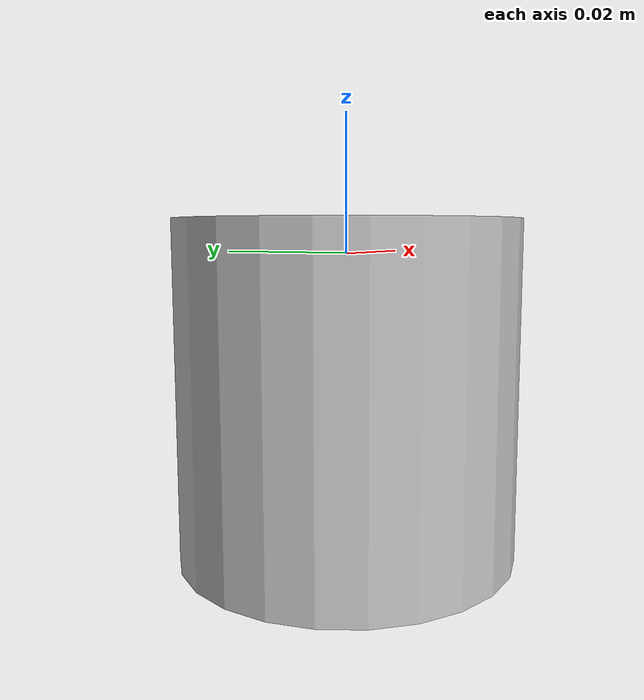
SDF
<?xml version='1.0'?>
<sdf version='1.9'>
    <model name='floating_camera'>
        <gravity>false</gravity>
        <static>true</static>
        <link name="base_link" gravity="0 0 0">
            <pose>0 0 0 0 0 0</pose>
        </link>
        <link name="camera_link">
            <inertial>
                <mass>0.01</mass>
                <inertia>
                    <ixx>0.00001</ixx>
                    <ixy>0</ixy>
                    <ixz>0</ixz>
                    <iyy>0.00001</iyy>
                    <iyz>0</iyz>
                    <izz>0.00001</izz>
                </inertia>
            </inertial>
            <gravity>false</gravity>
            <pose degrees="true">0 0 0 0 180 0</pose>
            <visual name="camera_visual">
                <pose>0 0 0.02 0 0 0</pose>
                <geometry>
                <cylinder>
                    <radius>0.025</radius>
                    <length>0.050</length>
                </cylinder>
                </geometry>
            </visual>
            <sensor name="floating_camera" type="camera">
            <pose degrees="true">0 0 0 0 -90 0</pose>
            <camera>
                <horizontal_fov>1.57</horizontal_fov>
                <image>
                <width>640</width>
                <height>480</height>
                </image>
                <clip>
                <near>0.05</near>
                <far>15000</far>
                </clip>
            </camera>
            <always_on>1</always_on>
            <update_rate>3</update_rate>
            <visualize>0</visualize>
            </sensor>
        </link>
        <joint name="camera_joint" type="prismatic">
            <parent>base_link</parent>
            <child>camera_link</child>
        </joint>
      <plugin
        filename="gz-sim-pose-publisher-system"
        name="gz::sim::systems::PosePublisher">
        <publish_link_pose>false</publish_link_pose>
        <publish_collision_pose>false</publish_collision_pose>
        <publish_visual_pose>false</publish_visual_pose>
        <publish_nested_model_pose>false</publish_nested_model_pose>
      </plugin>
    </model>
</sdf>
